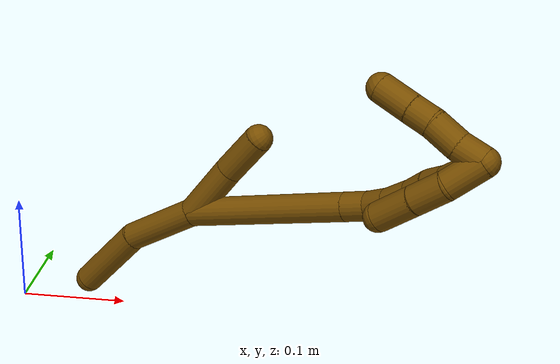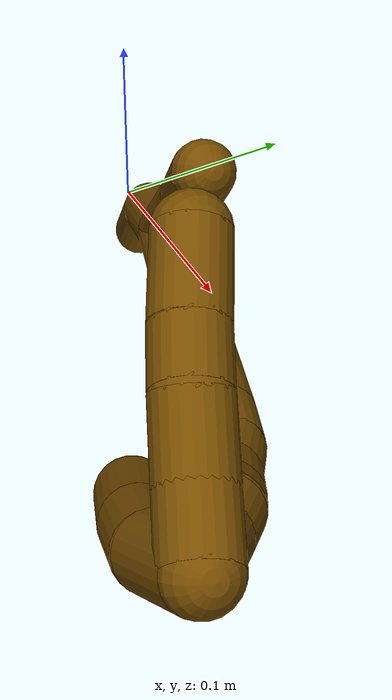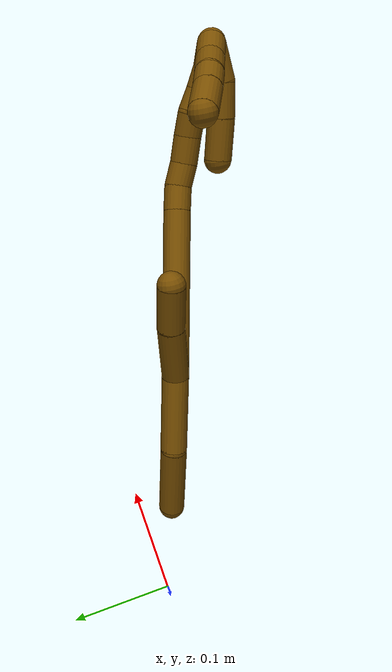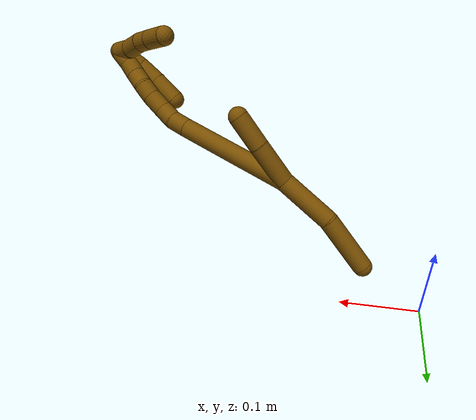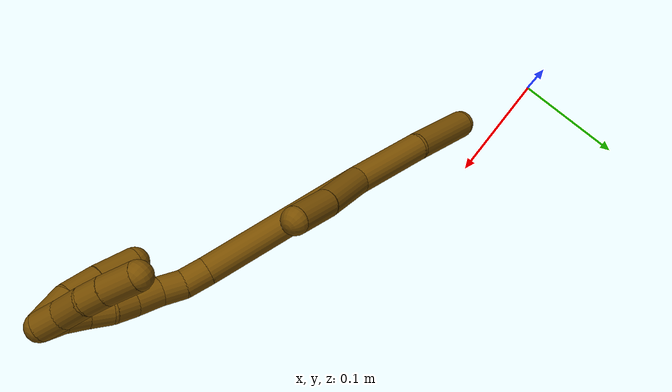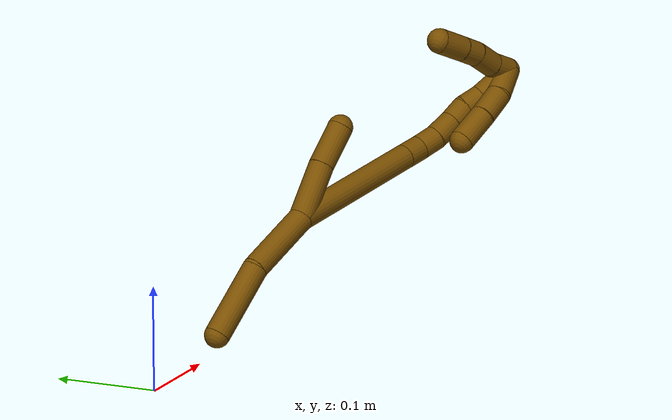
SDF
<sdf version="1.7">
 <world name="default">
  <model name="12">
   <static>0</static>
   <link name="12">
    <collision name="collision-cylinder-e_1_2_8">
     <pose>-0.002045 0.008396 -0.036046 -2.91273 -0.055204 0.471511</pose>
     <geometry><cylinder><radius>0.0125</radius><length>0.074135</length></cylinder></geometry>
     <surface>
      <friction><ode><mu>1.16</mu><mu2>1.16</mu2><slip1>0</slip1><slip2>0</slip2></ode></friction>
      <contact><ode><kp>1e+06</kp><kd>1</kd><max_vel>0</max_vel><min_depth>0.001</min_depth></ode></contact>
     </surface>
    </collision>
    <visual name="visual-cylinder-e_1_2_8">
     <pose>-0.002045 0.008396 -0.036046 -2.91273 -0.055204 0.471511</pose>
     <geometry><cylinder><radius>0.0125</radius><length>0.074135</length></cylinder></geometry>
     <material><ambient>0.466667 0.301961 0 1</ambient></material>
    </visual>
    <collision name="collision-cylinder-e_2_8_6">
     <pose>0.003996 0.022131 -0.108766 -2.99707 0.214833 -1.95918</pose>
     <geometry><cylinder><radius>0.0125</radius><length>0.075865</length></cylinder></geometry>
     <surface>
      <friction><ode><mu>1.16</mu><mu2>1.16</mu2><slip1>0</slip1><slip2>0</slip2></ode></friction>
      <contact><ode><kp>1e+06</kp><kd>1</kd><max_vel>0</max_vel><min_depth>0.001</min_depth></ode></contact>
     </surface>
    </collision>
    <visual name="visual-cylinder-e_2_8_6">
     <pose>0.003996 0.022131 -0.108766 -2.99707 0.214833 -1.95918</pose>
     <geometry><cylinder><radius>0.0125</radius><length>0.075865</length></cylinder></geometry>
     <material><ambient>0.466667 0.301961 0 1</ambient></material>
    </visual>
    <collision name="collision-cylinder-e_1_2_9">
     <pose>-0.007893 -0.00038 0.027082 0.014022 -0.283552 -0.002001</pose>
     <geometry><cylinder><radius>0.0125</radius><length>0.056422</length></cylinder></geometry>
     <surface>
      <friction><ode><mu>1.16</mu><mu2>1.16</mu2><slip1>0</slip1><slip2>0</slip2></ode></friction>
      <contact><ode><kp>1e+06</kp><kd>1</kd><max_vel>0</max_vel><min_depth>0.001</min_depth></ode></contact>
     </surface>
    </collision>
    <visual name="visual-cylinder-e_1_2_9">
     <pose>-0.007893 -0.00038 0.027082 0.014022 -0.283552 -0.002001</pose>
     <geometry><cylinder><radius>0.0125</radius><length>0.056422</length></cylinder></geometry>
     <material><ambient>0.466667 0.301961 0 1</ambient></material>
    </visual>
    <collision name="collision-cylinder-e_2_9_5">
     <pose>-0.021393 -0.003021 0.075097 0.107597 -0.260319 -0.014098</pose>
     <geometry><cylinder><radius>0.0125</radius><length>0.043578</length></cylinder></geometry>
     <surface>
      <friction><ode><mu>1.16</mu><mu2>1.16</mu2><slip1>0</slip1><slip2>0</slip2></ode></friction>
      <contact><ode><kp>1e+06</kp><kd>1</kd><max_vel>0</max_vel><min_depth>0.001</min_depth></ode></contact>
     </surface>
    </collision>
    <visual name="visual-cylinder-e_2_9_5">
     <pose>-0.021393 -0.003021 0.075097 0.107597 -0.260319 -0.014098</pose>
     <geometry><cylinder><radius>0.0125</radius><length>0.043578</length></cylinder></geometry>
     <material><ambient>0.466667 0.301961 0 1</ambient></material>
    </visual>
    <collision name="collision-cylinder-e_1_2_10">
     <pose>0.025232 -0.022324 0.067902 0.317641 0.339353 0.054868</pose>
     <geometry><cylinder><radius>0.0125</radius><length>0.151601</length></cylinder></geometry>
     <surface>
      <friction><ode><mu>1.16</mu><mu2>1.16</mu2><slip1>0</slip1><slip2>0</slip2></ode></friction>
      <contact><ode><kp>1e+06</kp><kd>1</kd><max_vel>0</max_vel><min_depth>0.001</min_depth></ode></contact>
     </surface>
    </collision>
    <visual name="visual-cylinder-e_1_2_10">
     <pose>0.025232 -0.022324 0.067902 0.317641 0.339353 0.054868</pose>
     <geometry><cylinder><radius>0.0125</radius><length>0.151601</length></cylinder></geometry>
     <material><ambient>0.466667 0.301961 0 1</ambient></material>
    </visual>
    <collision name="collision-cylinder-e_2_10_11">
     <pose>0.053958 -0.048217 0.145854 0.341188 0.316549 0.054977</pose>
     <geometry><cylinder><radius>0.0125</radius><length>0.022445</length></cylinder></geometry>
     <surface>
      <friction><ode><mu>1.16</mu><mu2>1.16</mu2><slip1>0</slip1><slip2>0</slip2></ode></friction>
      <contact><ode><kp>1e+06</kp><kd>1</kd><max_vel>0</max_vel><min_depth>0.001</min_depth></ode></contact>
     </surface>
    </collision>
    <visual name="visual-cylinder-e_2_10_11">
     <pose>0.053958 -0.048217 0.145854 0.341188 0.316549 0.054977</pose>
     <geometry><cylinder><radius>0.0125</radius><length>0.022445</length></cylinder></geometry>
     <material><ambient>0.466667 0.301961 0 1</ambient></material>
    </visual>
    <collision name="collision-cylinder-e_3_11_12">
     <pose>0.058441 -0.056693 0.165297 0.481471 0.093062 0.022862</pose>
     <geometry><cylinder><radius>0.0125</radius><length>0.021286</length></cylinder></geometry>
     <surface>
      <friction><ode><mu>1.16</mu><mu2>1.16</mu2><slip1>0</slip1><slip2>0</slip2></ode></friction>
      <contact><ode><kp>1e+06</kp><kd>1</kd><max_vel>0</max_vel><min_depth>0.001</min_depth></ode></contact>
     </surface>
    </collision>
    <visual name="visual-cylinder-e_3_11_12">
     <pose>0.058441 -0.056693 0.165297 0.481471 0.093062 0.022862</pose>
     <geometry><cylinder><radius>0.0125</radius><length>0.021286</length></cylinder></geometry>
     <material><ambient>0.466667 0.301961 0 1</ambient></material>
    </visual>
    <collision name="collision-cylinder-e_4_12_13">
     <pose>0.059376 -0.065621 0.186245 0.334841 -0.004382 -0.000741</pose>
     <geometry><cylinder><radius>0.0125</radius><length>0.024471</length></cylinder></geometry>
     <surface>
      <friction><ode><mu>1.16</mu><mu2>1.16</mu2><slip1>0</slip1><slip2>0</slip2></ode></friction>
      <contact><ode><kp>1e+06</kp><kd>1</kd><max_vel>0</max_vel><min_depth>0.001</min_depth></ode></contact>
     </surface>
    </collision>
    <visual name="visual-cylinder-e_4_12_13">
     <pose>0.059376 -0.065621 0.186245 0.334841 -0.004382 -0.000741</pose>
     <geometry><cylinder><radius>0.0125</radius><length>0.024471</length></cylinder></geometry>
     <material><ambient>0.466667 0.301961 0 1</ambient></material>
    </visual>
    <collision name="collision-cylinder-e_5_13_14">
     <pose>0.058023 -0.072898 0.207234 0.332354 -0.129532 -0.021755</pose>
     <geometry><cylinder><radius>0.0125</radius><length>0.020126</length></cylinder></geometry>
     <surface>
      <friction><ode><mu>1.16</mu><mu2>1.16</mu2><slip1>0</slip1><slip2>0</slip2></ode></friction>
      <contact><ode><kp>1e+06</kp><kd>1</kd><max_vel>0</max_vel><min_depth>0.001</min_depth></ode></contact>
     </surface>
    </collision>
    <visual name="visual-cylinder-e_5_13_14">
     <pose>0.058023 -0.072898 0.207234 0.332354 -0.129532 -0.021755</pose>
     <geometry><cylinder><radius>0.0125</radius><length>0.020126</length></cylinder></geometry>
     <material><ambient>0.466667 0.301961 0 1</ambient></material>
    </visual>
    <collision name="collision-cylinder-e_6_14_15">
     <pose>0.056616 -0.081588 0.225085 0.573224 -0.01063 -0.003133</pose>
     <geometry><cylinder><radius>0.0125</radius><length>0.020042</length></cylinder></geometry>
     <surface>
      <friction><ode><mu>1.16</mu><mu2>1.16</mu2><slip1>0</slip1><slip2>0</slip2></ode></friction>
      <contact><ode><kp>1e+06</kp><kd>1</kd><max_vel>0</max_vel><min_depth>0.001</min_depth></ode></contact>
     </surface>
    </collision>
    <visual name="visual-cylinder-e_6_14_15">
     <pose>0.056616 -0.081588 0.225085 0.573224 -0.01063 -0.003133</pose>
     <geometry><cylinder><radius>0.0125</radius><length>0.020042</length></cylinder></geometry>
     <material><ambient>0.466667 0.301961 0 1</ambient></material>
    </visual>
    <collision name="collision-cylinder-e_7_15_16">
     <pose>0.05527 -0.091569 0.242339 0.475247 -0.12413 -0.030101</pose>
     <geometry><cylinder><radius>0.0125</radius><length>0.020027</length></cylinder></geometry>
     <surface>
      <friction><ode><mu>1.16</mu><mu2>1.16</mu2><slip1>0</slip1><slip2>0</slip2></ode></friction>
      <contact><ode><kp>1e+06</kp><kd>1</kd><max_vel>0</max_vel><min_depth>0.001</min_depth></ode></contact>
     </surface>
    </collision>
    <visual name="visual-cylinder-e_7_15_16">
     <pose>0.05527 -0.091569 0.242339 0.475247 -0.12413 -0.030101</pose>
     <geometry><cylinder><radius>0.0125</radius><length>0.020027</length></cylinder></geometry>
     <material><ambient>0.466667 0.301961 0 1</ambient></material>
    </visual>
    <collision name="collision-cylinder-e_8_16_1">
     <pose>0.052938 -0.099151 0.26064 0.310316 -0.109405 -0.017129</pose>
     <geometry><cylinder><radius>0.0125</radius><length>0.020002</length></cylinder></geometry>
     <surface>
      <friction><ode><mu>1.16</mu><mu2>1.16</mu2><slip1>0</slip1><slip2>0</slip2></ode></friction>
      <contact><ode><kp>1e+06</kp><kd>1</kd><max_vel>0</max_vel><min_depth>0.001</min_depth></ode></contact>
     </surface>
    </collision>
    <visual name="visual-cylinder-e_8_16_1">
     <pose>0.052938 -0.099151 0.26064 0.310316 -0.109405 -0.017129</pose>
     <geometry><cylinder><radius>0.0125</radius><length>0.020002</length></cylinder></geometry>
     <material><ambient>0.466667 0.301961 0 1</ambient></material>
    </visual>
    <collision name="collision-cylinder-e_1_1_17">
     <pose>0.043109 -0.097227 0.264514 -2.41613 -0.863089 1.76297</pose>
     <geometry><cylinder><radius>0.0125</radius><length>0.022998</length></cylinder></geometry>
     <surface>
      <friction><ode><mu>1.16</mu><mu2>1.16</mu2><slip1>0</slip1><slip2>0</slip2></ode></friction>
      <contact><ode><kp>1e+06</kp><kd>1</kd><max_vel>0</max_vel><min_depth>0.001</min_depth></ode></contact>
     </surface>
    </collision>
    <visual name="visual-cylinder-e_1_1_17">
     <pose>0.043109 -0.097227 0.264514 -2.41613 -0.863089 1.76297</pose>
     <geometry><cylinder><radius>0.0125</radius><length>0.022998</length></cylinder></geometry>
     <material><ambient>0.466667 0.301961 0 1</ambient></material>
    </visual>
    <collision name="collision-cylinder-e_2_17_18">
     <pose>0.023177 -0.086816 0.254583 -2.24291 -1.0141 1.71173</pose>
     <geometry><cylinder><radius>0.0125</radius><length>0.02637</length></cylinder></geometry>
     <surface>
      <friction><ode><mu>1.16</mu><mu2>1.16</mu2><slip1>0</slip1><slip2>0</slip2></ode></friction>
      <contact><ode><kp>1e+06</kp><kd>1</kd><max_vel>0</max_vel><min_depth>0.001</min_depth></ode></contact>
     </surface>
    </collision>
    <visual name="visual-cylinder-e_2_17_18">
     <pose>0.023177 -0.086816 0.254583 -2.24291 -1.0141 1.71173</pose>
     <geometry><cylinder><radius>0.0125</radius><length>0.02637</length></cylinder></geometry>
     <material><ambient>0.466667 0.301961 0 1</ambient></material>
    </visual>
    <collision name="collision-cylinder-e_3_18_19">
     <pose>0.004309 -0.076793 0.24551 -2.37384 -0.86185 1.69989</pose>
     <geometry><cylinder><radius>0.0125</radius><length>0.020219</length></cylinder></geometry>
     <surface>
      <friction><ode><mu>1.16</mu><mu2>1.16</mu2><slip1>0</slip1><slip2>0</slip2></ode></friction>
      <contact><ode><kp>1e+06</kp><kd>1</kd><max_vel>0</max_vel><min_depth>0.001</min_depth></ode></contact>
     </surface>
    </collision>
    <visual name="visual-cylinder-e_3_18_19">
     <pose>0.004309 -0.076793 0.24551 -2.37384 -0.86185 1.69989</pose>
     <geometry><cylinder><radius>0.0125</radius><length>0.020219</length></cylinder></geometry>
     <material><ambient>0.466667 0.301961 0 1</ambient></material>
    </visual>
    <collision name="collision-cylinder-e_4_19_4">
     <pose>-0.014591 -0.064752 0.233746 -2.32576 -0.830557 1.59087</pose>
     <geometry><cylinder><radius>0.0125</radius><length>0.030413</length></cylinder></geometry>
     <surface>
      <friction><ode><mu>1.16</mu><mu2>1.16</mu2><slip1>0</slip1><slip2>0</slip2></ode></friction>
      <contact><ode><kp>1e+06</kp><kd>1</kd><max_vel>0</max_vel><min_depth>0.001</min_depth></ode></contact>
     </surface>
    </collision>
    <visual name="visual-cylinder-e_4_19_4">
     <pose>-0.014591 -0.064752 0.233746 -2.32576 -0.830557 1.59087</pose>
     <geometry><cylinder><radius>0.0125</radius><length>0.030413</length></cylinder></geometry>
     <material><ambient>0.466667 0.301961 0 1</ambient></material>
    </visual>
    <collision name="collision-cylinder-e_1_1_20">
     <pose>0.051605 -0.103888 0.253503 3.03947 -0.01446 -0.281087</pose>
     <geometry><cylinder><radius>0.0125</radius><length>0.033384</length></cylinder></geometry>
     <surface>
      <friction><ode><mu>1.16</mu><mu2>1.16</mu2><slip1>0</slip1><slip2>0</slip2></ode></friction>
      <contact><ode><kp>1e+06</kp><kd>1</kd><max_vel>0</max_vel><min_depth>0.001</min_depth></ode></contact>
     </surface>
    </collision>
    <visual name="visual-cylinder-e_1_1_20">
     <pose>0.051605 -0.103888 0.253503 3.03947 -0.01446 -0.281087</pose>
     <geometry><cylinder><radius>0.0125</radius><length>0.033384</length></cylinder></geometry>
     <material><ambient>0.466667 0.301961 0 1</ambient></material>
    </visual>
    <collision name="collision-cylinder-e_2_20_21">
     <pose>0.051279 -0.103045 0.221996 -2.97248 -0.005562 0.065602</pose>
     <geometry><cylinder><radius>0.0125</radius><length>0.030239</length></cylinder></geometry>
     <surface>
      <friction><ode><mu>1.16</mu><mu2>1.16</mu2><slip1>0</slip1><slip2>0</slip2></ode></friction>
      <contact><ode><kp>1e+06</kp><kd>1</kd><max_vel>0</max_vel><min_depth>0.001</min_depth></ode></contact>
     </surface>
    </collision>
    <visual name="visual-cylinder-e_2_20_21">
     <pose>0.051279 -0.103045 0.221996 -2.97248 -0.005562 0.065602</pose>
     <geometry><cylinder><radius>0.0125</radius><length>0.030239</length></cylinder></geometry>
     <material><ambient>0.466667 0.301961 0 1</ambient></material>
    </visual>
    <collision name="collision-cylinder-e_3_21_3">
     <pose>0.051629 -0.096224 0.189419 -2.9042 0.023865 -0.199455</pose>
     <geometry><cylinder><radius>0.0125</radius><length>0.036377</length></cylinder></geometry>
     <surface>
      <friction><ode><mu>1.16</mu><mu2>1.16</mu2><slip1>0</slip1><slip2>0</slip2></ode></friction>
      <contact><ode><kp>1e+06</kp><kd>1</kd><max_vel>0</max_vel><min_depth>0.001</min_depth></ode></contact>
     </surface>
    </collision>
    <visual name="visual-cylinder-e_3_21_3">
     <pose>0.051629 -0.096224 0.189419 -2.9042 0.023865 -0.199455</pose>
     <geometry><cylinder><radius>0.0125</radius><length>0.036377</length></cylinder></geometry>
     <material><ambient>0.466667 0.301961 0 1</ambient></material>
    </visual>
    <collision name="collision-sphere-3">
     <pose>0.052063 -0.091948 0.171746 0 -0 0</pose>
     <geometry><sphere><radius>0.0125</radius></sphere></geometry>
     <surface>
      <friction><ode><mu>1.16</mu><mu2>1.16</mu2><slip1>0</slip1><slip2>0</slip2></ode></friction>
      <contact><ode><kp>1e+06</kp><kd>1</kd><max_vel>0</max_vel><min_depth>0.001</min_depth></ode></contact>
     </surface>
    </collision>
    <visual name="visual-sphere-3">
     <pose>0.052063 -0.091948 0.171746 0 -0 0</pose>
     <geometry><sphere><radius>0.0125</radius></sphere></geometry>
     <material><ambient>0.466667 0.301961 0 1</ambient></material>
    </visual>
    <collision name="collision-sphere-21">
     <pose>0.051195 -0.1005 0.207093 0 -0 0</pose>
     <geometry><sphere><radius>0.0125</radius></sphere></geometry>
     <surface>
      <friction><ode><mu>1.16</mu><mu2>1.16</mu2><slip1>0</slip1><slip2>0</slip2></ode></friction>
      <contact><ode><kp>1e+06</kp><kd>1</kd><max_vel>0</max_vel><min_depth>0.001</min_depth></ode></contact>
     </surface>
    </collision>
    <visual name="visual-sphere-21">
     <pose>0.051195 -0.1005 0.207093 0 -0 0</pose>
     <geometry><sphere><radius>0.0125</radius></sphere></geometry>
     <material><ambient>0.466667 0.301961 0 1</ambient></material>
    </visual>
    <collision name="collision-sphere-20">
     <pose>0.051363 -0.10559 0.2369 0 -0 0</pose>
     <geometry><sphere><radius>0.0125</radius></sphere></geometry>
     <surface>
      <friction><ode><mu>1.16</mu><mu2>1.16</mu2><slip1>0</slip1><slip2>0</slip2></ode></friction>
      <contact><ode><kp>1e+06</kp><kd>1</kd><max_vel>0</max_vel><min_depth>0.001</min_depth></ode></contact>
     </surface>
    </collision>
    <visual name="visual-sphere-20">
     <pose>0.051363 -0.10559 0.2369 0 -0 0</pose>
     <geometry><sphere><radius>0.0125</radius></sphere></geometry>
     <material><ambient>0.466667 0.301961 0 1</ambient></material>
    </visual>
    <collision name="collision-sphere-4">
     <pose>-0.025819 -0.057283 0.226718 0 -0 0</pose>
     <geometry><sphere><radius>0.0125</radius></sphere></geometry>
     <surface>
      <friction><ode><mu>1.16</mu><mu2>1.16</mu2><slip1>0</slip1><slip2>0</slip2></ode></friction>
      <contact><ode><kp>1e+06</kp><kd>1</kd><max_vel>0</max_vel><min_depth>0.001</min_depth></ode></contact>
     </surface>
    </collision>
    <visual name="visual-sphere-4">
     <pose>-0.025819 -0.057283 0.226718 0 -0 0</pose>
     <geometry><sphere><radius>0.0125</radius></sphere></geometry>
     <material><ambient>0.466667 0.301961 0 1</ambient></material>
    </visual>
    <collision name="collision-sphere-10">
     <pose>0.050465 -0.044649 0.135804 0 -0 0</pose>
     <geometry><sphere><radius>0.0125</radius></sphere></geometry>
     <surface>
      <friction><ode><mu>1.16</mu><mu2>1.16</mu2><slip1>0</slip1><slip2>0</slip2></ode></friction>
      <contact><ode><kp>1e+06</kp><kd>1</kd><max_vel>0</max_vel><min_depth>0.001</min_depth></ode></contact>
     </surface>
    </collision>
    <visual name="visual-sphere-10">
     <pose>0.050465 -0.044649 0.135804 0 -0 0</pose>
     <geometry><sphere><radius>0.0125</radius></sphere></geometry>
     <material><ambient>0.466667 0.301961 0 1</ambient></material>
    </visual>
    <collision name="collision-sphere-5">
     <pose>-0.027002 -0.005282 0.09603 0 -0 0</pose>
     <geometry><sphere><radius>0.0125</radius></sphere></geometry>
     <surface>
      <friction><ode><mu>1.16</mu><mu2>1.16</mu2><slip1>0</slip1><slip2>0</slip2></ode></friction>
      <contact><ode><kp>1e+06</kp><kd>1</kd><max_vel>0</max_vel><min_depth>0.001</min_depth></ode></contact>
     </surface>
    </collision>
    <visual name="visual-sphere-5">
     <pose>-0.027002 -0.005282 0.09603 0 -0 0</pose>
     <geometry><sphere><radius>0.0125</radius></sphere></geometry>
     <material><ambient>0.466667 0.301961 0 1</ambient></material>
    </visual>
    <collision name="collision-sphere-6">
     <pose>0.012083 0.027468 -0.14544 0 -0 0</pose>
     <geometry><sphere><radius>0.0125</radius></sphere></geometry>
     <surface>
      <friction><ode><mu>1.16</mu><mu2>1.16</mu2><slip1>0</slip1><slip2>0</slip2></ode></friction>
      <contact><ode><kp>1e+06</kp><kd>1</kd><max_vel>0</max_vel><min_depth>0.001</min_depth></ode></contact>
     </surface>
    </collision>
    <visual name="visual-sphere-6">
     <pose>0.012083 0.027468 -0.14544 0 -0 0</pose>
     <geometry><sphere><radius>0.0125</radius></sphere></geometry>
     <material><ambient>0.466667 0.301961 0 1</ambient></material>
    </visual>
    <collision name="collision-sphere-9">
     <pose>-0.015785 -0.00076 0.054164 0 -0 0</pose>
     <geometry><sphere><radius>0.0125</radius></sphere></geometry>
     <surface>
      <friction><ode><mu>1.16</mu><mu2>1.16</mu2><slip1>0</slip1><slip2>0</slip2></ode></friction>
      <contact><ode><kp>1e+06</kp><kd>1</kd><max_vel>0</max_vel><min_depth>0.001</min_depth></ode></contact>
     </surface>
    </collision>
    <visual name="visual-sphere-9">
     <pose>-0.015785 -0.00076 0.054164 0 -0 0</pose>
     <geometry><sphere><radius>0.0125</radius></sphere></geometry>
     <material><ambient>0.466667 0.301961 0 1</ambient></material>
    </visual>
    <collision name="collision-sphere-2">
     <geometry><sphere><radius>0.0125</radius></sphere></geometry>
     <surface>
      <friction><ode><mu>1.16</mu><mu2>1.16</mu2><slip1>0</slip1><slip2>0</slip2></ode></friction>
      <contact><ode><kp>1e+06</kp><kd>1</kd><max_vel>0</max_vel><min_depth>0.001</min_depth></ode></contact>
     </surface>
    </collision>
    <visual name="visual-sphere-2">
     <geometry><sphere><radius>0.0125</radius></sphere></geometry>
     <material><ambient>0.466667 0.301961 0 1</ambient></material>
    </visual>
    <collision name="collision-sphere-19">
     <pose>-0.003364 -0.072222 0.240774 0 -0 0</pose>
     <geometry><sphere><radius>0.0125</radius></sphere></geometry>
     <surface>
      <friction><ode><mu>1.16</mu><mu2>1.16</mu2><slip1>0</slip1><slip2>0</slip2></ode></friction>
      <contact><ode><kp>1e+06</kp><kd>1</kd><max_vel>0</max_vel><min_depth>0.001</min_depth></ode></contact>
     </surface>
    </collision>
    <visual name="visual-sphere-19">
     <pose>-0.003364 -0.072222 0.240774 0 -0 0</pose>
     <geometry><sphere><radius>0.0125</radius></sphere></geometry>
     <material><ambient>0.466667 0.301961 0 1</ambient></material>
    </visual>
    <collision name="collision-sphere-8">
     <pose>-0.00409 0.016793 -0.072092 0 -0 0</pose>
     <geometry><sphere><radius>0.0125</radius></sphere></geometry>
     <surface>
      <friction><ode><mu>1.16</mu><mu2>1.16</mu2><slip1>0</slip1><slip2>0</slip2></ode></friction>
      <contact><ode><kp>1e+06</kp><kd>1</kd><max_vel>0</max_vel><min_depth>0.001</min_depth></ode></contact>
     </surface>
    </collision>
    <visual name="visual-sphere-8">
     <pose>-0.00409 0.016793 -0.072092 0 -0 0</pose>
     <geometry><sphere><radius>0.0125</radius></sphere></geometry>
     <material><ambient>0.466667 0.301961 0 1</ambient></material>
    </visual>
    <collision name="collision-sphere-11">
     <pose>0.057452 -0.051786 0.155905 0 -0 0</pose>
     <geometry><sphere><radius>0.0125</radius></sphere></geometry>
     <surface>
      <friction><ode><mu>1.16</mu><mu2>1.16</mu2><slip1>0</slip1><slip2>0</slip2></ode></friction>
      <contact><ode><kp>1e+06</kp><kd>1</kd><max_vel>0</max_vel><min_depth>0.001</min_depth></ode></contact>
     </surface>
    </collision>
    <visual name="visual-sphere-11">
     <pose>0.057452 -0.051786 0.155905 0 -0 0</pose>
     <geometry><sphere><radius>0.0125</radius></sphere></geometry>
     <material><ambient>0.466667 0.301961 0 1</ambient></material>
    </visual>
    <collision name="collision-sphere-12">
     <pose>0.05943 -0.061601 0.174689 0 -0 0</pose>
     <geometry><sphere><radius>0.0125</radius></sphere></geometry>
     <surface>
      <friction><ode><mu>1.16</mu><mu2>1.16</mu2><slip1>0</slip1><slip2>0</slip2></ode></friction>
      <contact><ode><kp>1e+06</kp><kd>1</kd><max_vel>0</max_vel><min_depth>0.001</min_depth></ode></contact>
     </surface>
    </collision>
    <visual name="visual-sphere-12">
     <pose>0.05943 -0.061601 0.174689 0 -0 0</pose>
     <geometry><sphere><radius>0.0125</radius></sphere></geometry>
     <material><ambient>0.466667 0.301961 0 1</ambient></material>
    </visual>
    <collision name="collision-sphere-13">
     <pose>0.059322 -0.069642 0.197801 0 -0 0</pose>
     <geometry><sphere><radius>0.0125</radius></sphere></geometry>
     <surface>
      <friction><ode><mu>1.16</mu><mu2>1.16</mu2><slip1>0</slip1><slip2>0</slip2></ode></friction>
      <contact><ode><kp>1e+06</kp><kd>1</kd><max_vel>0</max_vel><min_depth>0.001</min_depth></ode></contact>
     </surface>
    </collision>
    <visual name="visual-sphere-13">
     <pose>0.059322 -0.069642 0.197801 0 -0 0</pose>
     <geometry><sphere><radius>0.0125</radius></sphere></geometry>
     <material><ambient>0.466667 0.301961 0 1</ambient></material>
    </visual>
    <collision name="collision-sphere-14">
     <pose>0.056723 -0.076154 0.216666 0 -0 0</pose>
     <geometry><sphere><radius>0.0125</radius></sphere></geometry>
     <surface>
      <friction><ode><mu>1.16</mu><mu2>1.16</mu2><slip1>0</slip1><slip2>0</slip2></ode></friction>
      <contact><ode><kp>1e+06</kp><kd>1</kd><max_vel>0</max_vel><min_depth>0.001</min_depth></ode></contact>
     </surface>
    </collision>
    <visual name="visual-sphere-14">
     <pose>0.056723 -0.076154 0.216666 0 -0 0</pose>
     <geometry><sphere><radius>0.0125</radius></sphere></geometry>
     <material><ambient>0.466667 0.301961 0 1</ambient></material>
    </visual>
    <collision name="collision-sphere-15">
     <pose>0.05651 -0.087022 0.233503 0 -0 0</pose>
     <geometry><sphere><radius>0.0125</radius></sphere></geometry>
     <surface>
      <friction><ode><mu>1.16</mu><mu2>1.16</mu2><slip1>0</slip1><slip2>0</slip2></ode></friction>
      <contact><ode><kp>1e+06</kp><kd>1</kd><max_vel>0</max_vel><min_depth>0.001</min_depth></ode></contact>
     </surface>
    </collision>
    <visual name="visual-sphere-15">
     <pose>0.05651 -0.087022 0.233503 0 -0 0</pose>
     <geometry><sphere><radius>0.0125</radius></sphere></geometry>
     <material><ambient>0.466667 0.301961 0 1</ambient></material>
    </visual>
    <collision name="collision-sphere-16">
     <pose>0.05403 -0.096116 0.251174 0 -0 0</pose>
     <geometry><sphere><radius>0.0125</radius></sphere></geometry>
     <surface>
      <friction><ode><mu>1.16</mu><mu2>1.16</mu2><slip1>0</slip1><slip2>0</slip2></ode></friction>
      <contact><ode><kp>1e+06</kp><kd>1</kd><max_vel>0</max_vel><min_depth>0.001</min_depth></ode></contact>
     </surface>
    </collision>
    <visual name="visual-sphere-16">
     <pose>0.05403 -0.096116 0.251174 0 -0 0</pose>
     <geometry><sphere><radius>0.0125</radius></sphere></geometry>
     <material><ambient>0.466667 0.301961 0 1</ambient></material>
    </visual>
    <collision name="collision-sphere-1">
     <pose>0.051846 -0.102187 0.270106 0 -0 0</pose>
     <geometry><sphere><radius>0.0125</radius></sphere></geometry>
     <surface>
      <friction><ode><mu>1.16</mu><mu2>1.16</mu2><slip1>0</slip1><slip2>0</slip2></ode></friction>
      <contact><ode><kp>1e+06</kp><kd>1</kd><max_vel>0</max_vel><min_depth>0.001</min_depth></ode></contact>
     </surface>
    </collision>
    <visual name="visual-sphere-1">
     <pose>0.051846 -0.102187 0.270106 0 -0 0</pose>
     <geometry><sphere><radius>0.0125</radius></sphere></geometry>
     <material><ambient>0.466667 0.301961 0 1</ambient></material>
    </visual>
    <collision name="collision-sphere-18">
     <pose>0.011983 -0.081364 0.250245 0 -0 0</pose>
     <geometry><sphere><radius>0.0125</radius></sphere></geometry>
     <surface>
      <friction><ode><mu>1.16</mu><mu2>1.16</mu2><slip1>0</slip1><slip2>0</slip2></ode></friction>
      <contact><ode><kp>1e+06</kp><kd>1</kd><max_vel>0</max_vel><min_depth>0.001</min_depth></ode></contact>
     </surface>
    </collision>
    <visual name="visual-sphere-18">
     <pose>0.011983 -0.081364 0.250245 0 -0 0</pose>
     <geometry><sphere><radius>0.0125</radius></sphere></geometry>
     <material><ambient>0.466667 0.301961 0 1</ambient></material>
    </visual>
    <collision name="collision-sphere-17">
     <pose>0.034371 -0.092267 0.258921 0 -0 0</pose>
     <geometry><sphere><radius>0.0125</radius></sphere></geometry>
     <surface>
      <friction><ode><mu>1.16</mu><mu2>1.16</mu2><slip1>0</slip1><slip2>0</slip2></ode></friction>
      <contact><ode><kp>1e+06</kp><kd>1</kd><max_vel>0</max_vel><min_depth>0.001</min_depth></ode></contact>
     </surface>
    </collision>
    <visual name="visual-sphere-17">
     <pose>0.034371 -0.092267 0.258921 0 -0 0</pose>
     <geometry><sphere><radius>0.0125</radius></sphere></geometry>
     <material><ambient>0.466667 0.301961 0 1</ambient></material>
    </visual>
    <inertial>
     <pose>0.023164 -0.040243 0.108273 0 -0 0</pose>
     <mass>0.75</mass>
     <inertia>
      <ixx>0.000343</ixx>
      <ixy>0</ixy>
      <ixz>0</ixz>
      <iyy>0.000294</iyy>
      <iyz>0</iyz>
      <izz>-1.1e-05</izz>
     </inertia>
    </inertial>
   </link>
   <pose>0.183574 -0.069474 0.131804 0.190605 0.913432 0.14387</pose>
  </model>
 </world>
</sdf>
